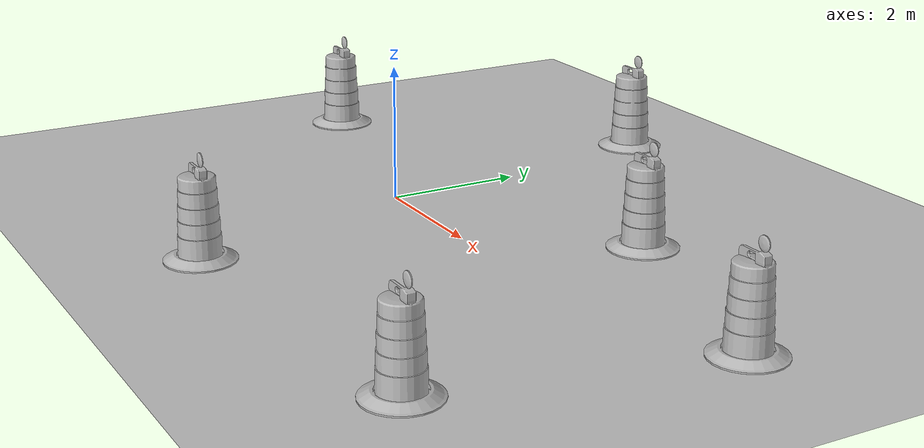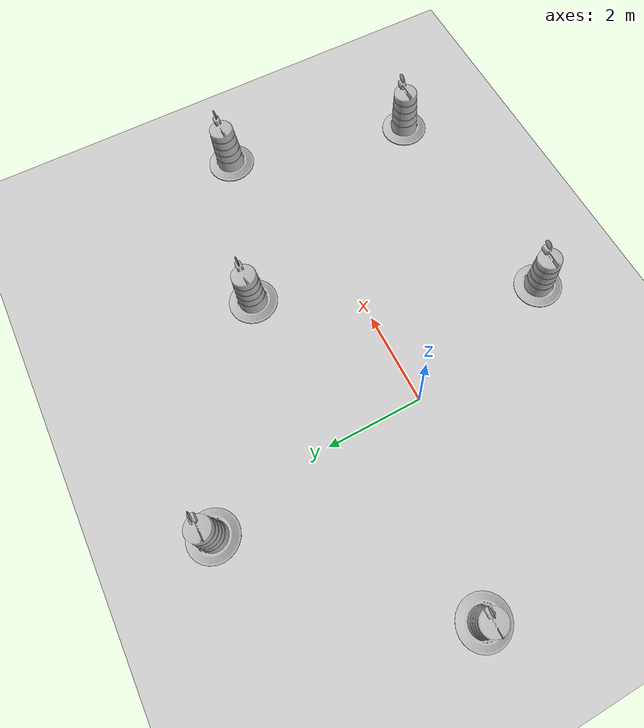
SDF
<sdf version="1.4">
 <world name="default">
  <light name="sun" type="directional">
   <pose>0 0 10 0 -0 0</pose>
   <diffuse>0.8 0.8 0.8 1</diffuse>
   <specular>0.2 0.2 0.2 1</specular>
   <attenuation>
    <range>1000</range>
    <constant>0.9</constant>
    <linear>0.01</linear>
    <quadratic>0.001</quadratic>
   </attenuation>
   <direction>-0.5 0.1 -0.9</direction>
  </light>
  <model name="ground_plane">
   <static>1</static>
   <link name="link">
    <collision name="collision">
     <geometry><plane><normal>0 0 1</normal><size>100 100</size></plane></geometry>
     <surface><friction><ode><mu>100</mu><mu2>50</mu2></ode></friction></surface>
    </collision>
    <visual name="visual">
     <cast_shadows>0</cast_shadows>
     <geometry><plane><normal>0 0 1</normal><size>100 100</size></plane></geometry>
     <material>
      <script><uri>file://media/materials/scripts/gazebo.material</uri><name>Gazebo/Grey</name></script>
     </material>
    </visual>
    <velocity_decay><linear>0</linear><angular>0</angular></velocity_decay>
   </link>
  </model>
  <physics type="ode">
   <max_step_size>0.001</max_step_size>
   <real_time_factor>1</real_time_factor>
   <real_time_update_rate>1000</real_time_update_rate>
   <gravity>0 0 -9.8</gravity>
  </physics>
  <scene><ambient>0.4 0.4 0.4 1</ambient><background>0.7 0.7 0.7 1</background><shadows>1</shadows></scene>
  <spherical_coordinates>
   <surface_model>EARTH_WGS84</surface_model>
   <latitude_deg>0</latitude_deg>
   <longitude_deg>0</longitude_deg>
   <elevation>0</elevation>
   <heading_deg>0</heading_deg>
  </spherical_coordinates>
  <model name="Construction Barrel">
   <link name="link">
    <inertial>
     <pose>0 0 0.4 0 -0 0</pose>
     <mass>500</mass>
     <inertia><ixx>51.2096</ixx><iyy>51.2096</iyy><izz>25</izz><ixy>0</ixy><ixz>0</ixz><iyz>0</iyz></inertia>
    </inertial>
    <collision name="collision">
     <geometry><mesh><uri>model://construction_barrel/meshes/construction_barrel.dae</uri></mesh></geometry>
    </collision>
    <visual name="visual">
     <geometry><mesh><uri>model://construction_barrel/meshes/construction_barrel.dae</uri></mesh></geometry>
    </visual>
    <velocity_decay><linear>0</linear><angular>0</angular></velocity_decay>
   </link>
   <pose>-4.00002 1.0002 -2e-06 3e-06 3e-06 -0.000361</pose>
   <static>0</static>
  </model>
  <model name="Construction Barrel_0">
   <link name="link">
    <inertial>
     <pose>0 0 0.4 0 -0 0</pose>
     <mass>500</mass>
     <inertia><ixx>51.2096</ixx><iyy>51.2096</iyy><izz>25</izz><ixy>0</ixy><ixz>0</ixz><iyz>0</iyz></inertia>
    </inertial>
    <collision name="collision">
     <geometry><mesh><uri>model://construction_barrel/meshes/construction_barrel.dae</uri></mesh></geometry>
    </collision>
    <visual name="visual">
     <geometry><mesh><uri>model://construction_barrel/meshes/construction_barrel.dae</uri></mesh></geometry>
    </visual>
    <velocity_decay><linear>0</linear><angular>0</angular></velocity_decay>
   </link>
   <pose>0.999979 -3.45545 -4e-06 2e-06 -7e-06 -0.000303</pose>
   <static>0</static>
  </model>
  <model name="Construction Barrel_1">
   <link name="link">
    <inertial>
     <pose>0 0 0.4 0 -0 0</pose>
     <mass>500</mass>
     <inertia><ixx>51.2096</ixx><iyy>51.2096</iyy><izz>25</izz><ixy>0</ixy><ixz>0</ixz><iyz>0</iyz></inertia>
    </inertial>
    <collision name="collision">
     <geometry><mesh><uri>model://construction_barrel/meshes/construction_barrel.dae</uri></mesh></geometry>
    </collision>
    <visual name="visual">
     <geometry><mesh><uri>model://construction_barrel/meshes/construction_barrel.dae</uri></mesh></geometry>
    </visual>
    <velocity_decay><linear>0</linear><angular>0</angular></velocity_decay>
   </link>
   <pose>5.99998 -2.99986 -2e-06 1e-06 -4e-06 -0.000244</pose>
   <static>0</static>
  </model>
  <model name="Construction Barrel_2">
   <link name="link">
    <inertial>
     <pose>0 0 0.4 0 -0 0</pose>
     <mass>500</mass>
     <inertia><ixx>51.2096</ixx><iyy>51.2096</iyy><izz>25</izz><ixy>0</ixy><ixz>0</ixz><iyz>0</iyz></inertia>
    </inertial>
    <collision name="collision">
     <geometry><mesh><uri>model://construction_barrel/meshes/construction_barrel.dae</uri></mesh></geometry>
    </collision>
    <visual name="visual">
     <geometry><mesh><uri>model://construction_barrel/meshes/construction_barrel.dae</uri></mesh></geometry>
    </visual>
    <velocity_decay><linear>0</linear><angular>0</angular></velocity_decay>
   </link>
   <pose>6.99999 1.0001 -4e-06 9e-06 5e-06 -0.000185</pose>
   <static>0</static>
  </model>
  <model name="Construction Barrel_3">
   <link name="link">
    <inertial>
     <pose>0 0 0.4 0 -0 0</pose>
     <mass>500</mass>
     <inertia><ixx>51.2096</ixx><iyy>51.2096</iyy><izz>25</izz><ixy>0</ixy><ixz>0</ixz><iyz>0</iyz></inertia>
    </inertial>
    <collision name="collision">
     <geometry><mesh><uri>model://construction_barrel/meshes/construction_barrel.dae</uri></mesh></geometry>
    </collision>
    <visual name="visual">
     <geometry><mesh><uri>model://construction_barrel/meshes/construction_barrel.dae</uri></mesh></geometry>
    </visual>
    <velocity_decay><linear>0</linear><angular>0</angular></velocity_decay>
   </link>
   <pose>-0.466613 4.56905 -0 0 -0 -0.000121</pose>
   <static>0</static>
  </model>
  <model name="Construction Barrel_4">
   <link name="link">
    <inertial>
     <pose>0 0 0.4 0 -0 0</pose>
     <mass>500</mass>
     <inertia><ixx>51.2096</ixx><iyy>51.2096</iyy><izz>25</izz><ixy>0</ixy><ixz>0</ixz><iyz>0</iyz></inertia>
    </inertial>
    <collision name="collision">
     <geometry><mesh><uri>model://construction_barrel/meshes/construction_barrel.dae</uri></mesh></geometry>
    </collision>
    <visual name="visual">
     <geometry><mesh><uri>model://construction_barrel/meshes/construction_barrel.dae</uri></mesh></geometry>
    </visual>
    <velocity_decay><linear>0</linear><angular>0</angular></velocity_decay>
   </link>
   <pose>3.51353 2.00004 -0 0 -0 -6.4e-05</pose>
   <static>0</static>
  </model>
 </world>
</sdf>
